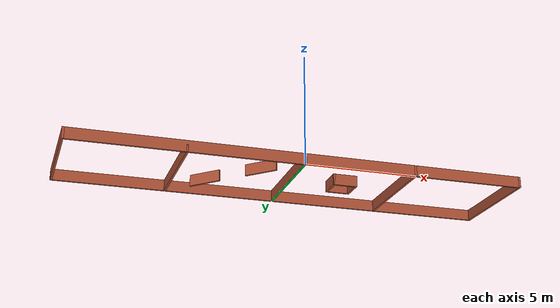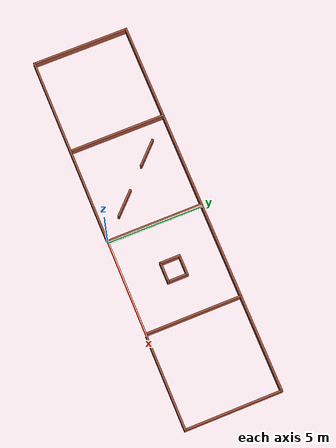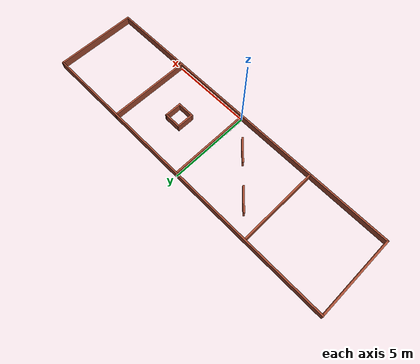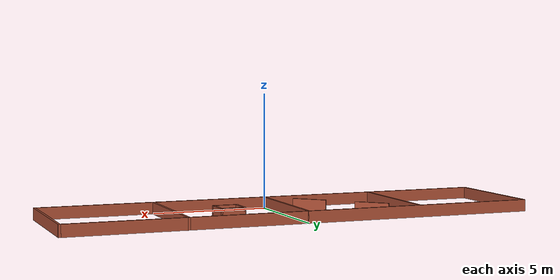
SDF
<?xml version='1.0'?>
<sdf version='1.7'>
  <model name='tb3_smp_0'>
    <pose>0 2.5 0 0 -0 0</pose>
    <link name='Wall_0'>
      <collision name='Wall_0_Collision'>
        <geometry>
          <box>
            <size>20.1 0.1 0.5</size>
          </box>
        </geometry>
        <pose>0 0 0.25 0 -0 0</pose>
      </collision>
      <visual name='Wall_0_Visual'>
        <pose>0 0 0.25 0 -0 0</pose>
        <geometry>
          <box>
            <size>20.1 0.1 0.5</size>
          </box>
        </geometry>
        <material>
          <script>
            <uri>file://media/materials/scripts/gazebo.material</uri>
            <name>Gazebo/Bricks</name>
          </script>
          <ambient>0.760784 0.662745 0.627451 1</ambient>
        </material>
        <meta>
          <layer>0</layer>
        </meta>
      </visual>
      <pose>0 2.5 0 0 -0 3.14159</pose>
    </link>
    <link name='Wall_1'>
      <collision name='Wall_1_Collision'>
        <geometry>
          <box>
            <size>5.1 0.1 0.5</size>
          </box>
        </geometry>
        <pose>0 0 0.25 0 -0 0</pose>
      </collision>
      <visual name='Wall_1_Visual'>
        <pose>0 0 0.25 0 -0 0</pose>
        <geometry>
          <box>
            <size>5.1 0.1 0.5</size>
          </box>
        </geometry>
        <material>
          <script>
            <uri>file://media/materials/scripts/gazebo.material</uri>
            <name>Gazebo/Bricks</name>
          </script>
          <ambient>0.760784 0.662745 0.627451 1</ambient>
        </material>
        <meta>
          <layer>0</layer>
        </meta>
      </visual>
      <pose>-10 0 0 0 -0 -1.5708</pose>
    </link>
    <link name='Wall_17'>
      <collision name='Wall_17_Collision'>
        <geometry>
          <box>
            <size>1.51421 0.1 0.5</size>
          </box>
        </geometry>
        <pose>0 0 0.25 0 -0 0</pose>
      </collision>
      <visual name='Wall_17_Visual'>
        <pose>0 0 0.25 0 -0 0</pose>
        <geometry>
          <box>
            <size>1.51421 0.1 0.5</size>
          </box>
        </geometry>
        <material>
          <script>
            <uri>file://media/materials/scripts/gazebo.material</uri>
            <name>Gazebo/Bricks</name>
          </script>
          <ambient>0.760784 0.662745 0.627451 1</ambient>
        </material>
        <meta>
          <layer>0</layer>
        </meta>
      </visual>
      <pose>-3.5 1 0 0 -0 2.35619</pose>
    </link>
    <link name='Wall_19'>
      <collision name='Wall_19_Collision'>
        <geometry>
          <box>
            <size>1.51421 0.1 0.5</size>
          </box>
        </geometry>
        <pose>0 0 0.25 0 -0 0</pose>
      </collision>
      <visual name='Wall_19_Visual'>
        <pose>0 0 0.25 0 -0 0</pose>
        <geometry>
          <box>
            <size>1.51421 0.1 0.5</size>
          </box>
        </geometry>
        <material>
          <script>
            <uri>file://media/materials/scripts/gazebo.material</uri>
            <name>Gazebo/Bricks</name>
          </script>
          <ambient>0.760784 0.662745 0.627451 1</ambient>
        </material>
        <meta>
          <layer>0</layer>
        </meta>
      </visual>
      <pose>-1.5 -1 0 0 -0 2.35619</pose>
    </link>
    <link name='Wall_2'>
      <collision name='Wall_2_Collision'>
        <geometry>
          <box>
            <size>20.1 0.1 0.5</size>
          </box>
        </geometry>
        <pose>0 0 0.25 0 -0 0</pose>
      </collision>
      <visual name='Wall_2_Visual'>
        <pose>0 0 0.25 0 -0 0</pose>
        <geometry>
          <box>
            <size>20.1 0.1 0.5</size>
          </box>
        </geometry>
        <material>
          <script>
            <uri>file://media/materials/scripts/gazebo.material</uri>
            <name>Gazebo/Bricks</name>
          </script>
          <ambient>0.760784 0.662745 0.627451 1</ambient>
        </material>
        <meta>
          <layer>0</layer>
        </meta>
      </visual>
      <pose>0 -2.5 0 0 -0 0</pose>
    </link>
    <link name='Wall_21'>
      <collision name='Wall_21_Collision'>
        <geometry>
          <box>
            <size>1.1 0.1 0.5</size>
          </box>
        </geometry>
        <pose>0 0 0.25 0 -0 0</pose>
      </collision>
      <visual name='Wall_21_Visual'>
        <pose>0 0 0.25 0 -0 0</pose>
        <geometry>
          <box>
            <size>1.1 0.1 0.5</size>
          </box>
        </geometry>
        <material>
          <script>
            <uri>file://media/materials/scripts/gazebo.material</uri>
            <name>Gazebo/Bricks</name>
          </script>
          <ambient>0.760784 0.662745 0.627451 1</ambient>
        </material>
        <meta>
          <layer>0</layer>
        </meta>
      </visual>
      <pose>2.5 -0.5 0 0 -0 3.14159</pose>
    </link>
    <link name='Wall_22'>
      <collision name='Wall_22_Collision'>
        <geometry>
          <box>
            <size>1.1 0.1 0.5</size>
          </box>
        </geometry>
        <pose>0 0 0.25 0 -0 0</pose>
      </collision>
      <visual name='Wall_22_Visual'>
        <pose>0 0 0.25 0 -0 0</pose>
        <geometry>
          <box>
            <size>1.1 0.1 0.5</size>
          </box>
        </geometry>
        <material>
          <script>
            <uri>file://media/materials/scripts/gazebo.material</uri>
            <name>Gazebo/Bricks</name>
          </script>
          <ambient>0.760784 0.662745 0.627451 1</ambient>
        </material>
        <meta>
          <layer>0</layer>
        </meta>
      </visual>
      <pose>2 0 0 0 -0 1.5708</pose>
    </link>
    <link name='Wall_23'>
      <collision name='Wall_23_Collision'>
        <geometry>
          <box>
            <size>1.1 0.1 0.5</size>
          </box>
        </geometry>
        <pose>0 0 0.25 0 -0 0</pose>
      </collision>
      <visual name='Wall_23_Visual'>
        <pose>0 0 0.25 0 -0 0</pose>
        <geometry>
          <box>
            <size>1.1 0.1 0.5</size>
          </box>
        </geometry>
        <material>
          <script>
            <uri>file://media/materials/scripts/gazebo.material</uri>
            <name>Gazebo/Bricks</name>
          </script>
          <ambient>0.760784 0.662745 0.627451 1</ambient>
        </material>
        <meta>
          <layer>0</layer>
        </meta>
      </visual>
      <pose>2.5 0.5 0 0 -0 0</pose>
    </link>
    <link name='Wall_25'>
      <collision name='Wall_25_Collision'>
        <geometry>
          <box>
            <size>1.1 0.1 0.5</size>
          </box>
        </geometry>
        <pose>0 0 0.25 0 -0 0</pose>
      </collision>
      <visual name='Wall_25_Visual'>
        <pose>0 0 0.25 0 -0 0</pose>
        <geometry>
          <box>
            <size>1.1 0.1 0.5</size>
          </box>
        </geometry>
        <material>
          <script>
            <uri>file://media/materials/scripts/gazebo.material</uri>
            <name>Gazebo/Bricks</name>
          </script>
          <ambient>0.760784 0.662745 0.627451 1</ambient>
        </material>
        <meta>
          <layer>0</layer>
        </meta>
      </visual>
      <pose>3 0 0 0 -0 -1.5708</pose>
    </link>
    <link name='Wall_3'>
      <collision name='Wall_3_Collision'>
        <geometry>
          <box>
            <size>5.1 0.1 0.5</size>
          </box>
        </geometry>
        <pose>0 0 0.25 0 -0 0</pose>
      </collision>
      <visual name='Wall_3_Visual'>
        <pose>0 0 0.25 0 -0 0</pose>
        <geometry>
          <box>
            <size>5.1 0.1 0.5</size>
          </box>
        </geometry>
        <material>
          <script>
            <uri>file://media/materials/scripts/gazebo.material</uri>
            <name>Gazebo/Bricks</name>
          </script>
          <ambient>0.760784 0.662745 0.627451 1</ambient>
        </material>
        <meta>
          <layer>0</layer>
        </meta>
      </visual>
      <pose>10 0 0 0 -0 1.5708</pose>
    </link>
    <link name='Wall_5'>
      <collision name='Wall_5_Collision'>
        <geometry>
          <box>
            <size>5.1 0.1 0.5</size>
          </box>
        </geometry>
        <pose>0 0 0.25 0 -0 0</pose>
      </collision>
      <visual name='Wall_5_Visual'>
        <pose>0 0 0.25 0 -0 0</pose>
        <geometry>
          <box>
            <size>5.1 0.1 0.5</size>
          </box>
        </geometry>
        <material>
          <script>
            <uri>file://media/materials/scripts/gazebo.material</uri>
            <name>Gazebo/Bricks</name>
          </script>
          <ambient>0.760784 0.662745 0.627451 1</ambient>
        </material>
        <meta>
          <layer>0</layer>
        </meta>
      </visual>
      <pose>-5 0 0 0 -0 1.5708</pose>
    </link>
    <link name='Wall_7'>
      <collision name='Wall_7_Collision'>
        <geometry>
          <box>
            <size>5.1 0.1 0.5</size>
          </box>
        </geometry>
        <pose>0 0 0.25 0 -0 0</pose>
      </collision>
      <visual name='Wall_7_Visual'>
        <pose>0 0 0.25 0 -0 0</pose>
        <geometry>
          <box>
            <size>5.1 0.1 0.5</size>
          </box>
        </geometry>
        <material>
          <script>
            <uri>file://media/materials/scripts/gazebo.material</uri>
            <name>Gazebo/Bricks</name>
          </script>
          <ambient>0.760784 0.662745 0.627451 1</ambient>
        </material>
        <meta>
          <layer>0</layer>
        </meta>
      </visual>
      <pose>0 0 0 0 -0 1.5708</pose>
    </link>
    <link name='Wall_9'>
      <collision name='Wall_9_Collision'>
        <geometry>
          <box>
            <size>5.1 0.1 0.5</size>
          </box>
        </geometry>
        <pose>0 0 0.25 0 -0 0</pose>
      </collision>
      <visual name='Wall_9_Visual'>
        <pose>0 0 0.25 0 -0 0</pose>
        <geometry>
          <box>
            <size>5.1 0.1 0.5</size>
          </box>
        </geometry>
        <material>
          <script>
            <uri>file://media/materials/scripts/gazebo.material</uri>
            <name>Gazebo/Bricks</name>
          </script>
          <ambient>0.760784 0.662745 0.627451 1</ambient>
        </material>
        <meta>
          <layer>0</layer>
        </meta>
      </visual>
      <pose>5 0 0 0 -0 1.5708</pose>
    </link>
    <static>1</static>
  </model>
</sdf>
